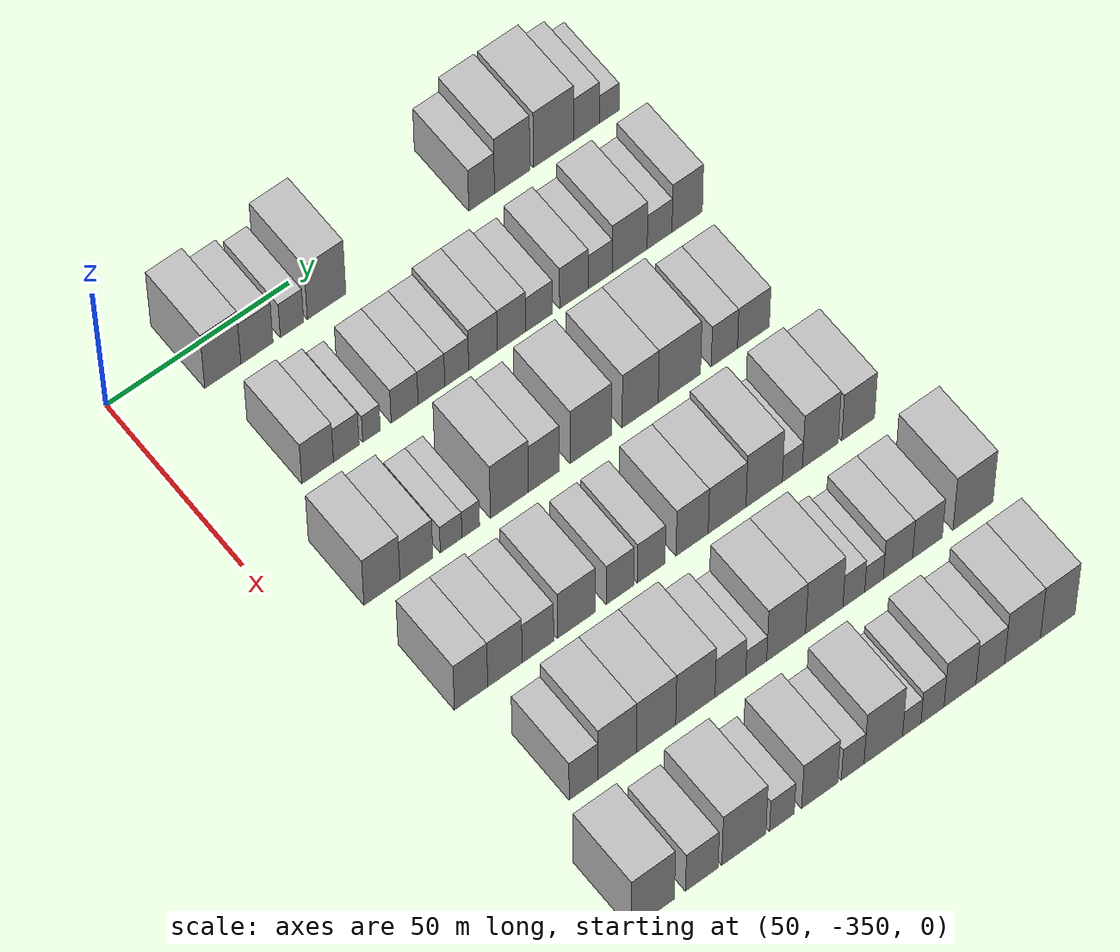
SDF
<sdf version="1.6">
 <world name="default">
  <model name="building_27">
   <static>1</static>
   <pose>50.0000 -325.5747 0 0.000000 0.000000 0.000000</pose>
   <link name="link">
    <pose>0 0 12.00 0 0 0</pose>
    <collision name="collision"><geometry><box><size>20.0000 9.8861 24.0000</size></box></geometry></collision>
    <visual name="visual">
     <cast_shadows>0</cast_shadows>
     <geometry><box><size>20.0000 9.8861 24.0000</size></box></geometry>
     <material>
      <script>
       <uri>model://HANNAS_wall/materials/scripts</uri>
       <uri>model://HANNAS_wall/materials/textures</uri>
       <name>vrc/HANNAS_wall</name>
      </script>
     </material>
    </visual>
   </link>
  </model>
  <model name="building_28">
   <static>1</static>
   <pose>50.0000 -316.2201 0 0.000000 0.000000 0.000000</pose>
   <link name="link">
    <pose>0 0 9.00 0 0 0</pose>
    <collision name="collision"><geometry><box><size>20.0000 8.8230 18.0000</size></box></geometry></collision>
    <visual name="visual">
     <cast_shadows>0</cast_shadows>
     <geometry><box><size>20.0000 8.8230 18.0000</size></box></geometry>
     <material>
      <script>
       <uri>model://HANNAS_wall/materials/scripts</uri>
       <uri>model://HANNAS_wall/materials/textures</uri>
       <name>vrc/HANNAS_wall</name>
      </script>
     </material>
    </visual>
   </link>
  </model>
  <model name="building_29">
   <static>1</static>
   <pose>50.0000 -306.5845 0 0.000000 0.000000 0.000000</pose>
   <link name="link">
    <pose>0 0 7.50 0 0 0</pose>
    <collision name="collision"><geometry><box><size>20.0000 6.4483 15.0000</size></box></geometry></collision>
    <visual name="visual">
     <cast_shadows>0</cast_shadows>
     <geometry><box><size>20.0000 6.4483 15.0000</size></box></geometry>
     <material>
      <script>
       <uri>model://HANNAS_wall/materials/scripts</uri>
       <uri>model://HANNAS_wall/materials/textures</uri>
       <name>vrc/HANNAS_wall</name>
      </script>
     </material>
    </visual>
   </link>
  </model>
  <model name="building_30">
   <static>1</static>
   <pose>50.0000 -297.0461 0 0.000000 0.000000 0.000000</pose>
   <link name="link">
    <pose>0 0 12.00 0 0 0</pose>
    <collision name="collision"><geometry><box><size>20.0000 10.6283 24.0000</size></box></geometry></collision>
    <visual name="visual">
     <cast_shadows>0</cast_shadows>
     <geometry><box><size>20.0000 10.6283 24.0000</size></box></geometry>
     <material>
      <script>
       <uri>model://HANNAS_wall/materials/scripts</uri>
       <uri>model://HANNAS_wall/materials/textures</uri>
       <name>vrc/HANNAS_wall</name>
      </script>
     </material>
    </visual>
   </link>
  </model>
  <model name="building_31">
   <static>1</static>
   <pose>50.0000 -253.9030 0 0.000000 0.000000 0.000000</pose>
   <link name="link">
    <pose>0 0 9.00 0 0 0</pose>
    <collision name="collision"><geometry><box><size>20.0000 7.2193 18.0000</size></box></geometry></collision>
    <visual name="visual">
     <cast_shadows>0</cast_shadows>
     <geometry><box><size>20.0000 7.2193 18.0000</size></box></geometry>
     <material>
      <script>
       <uri>model://HANNAS_wall/materials/scripts</uri>
       <uri>model://HANNAS_wall/materials/textures</uri>
       <name>vrc/HANNAS_wall</name>
      </script>
     </material>
    </visual>
   </link>
  </model>
  <model name="building_32">
   <static>1</static>
   <pose>50.0000 -245.3170 0 0.000000 0.000000 0.000000</pose>
   <link name="link">
    <pose>0 0 12.00 0 0 0</pose>
    <collision name="collision"><geometry><box><size>20.0000 9.9528 24.0000</size></box></geometry></collision>
    <visual name="visual">
     <cast_shadows>0</cast_shadows>
     <geometry><box><size>20.0000 9.9528 24.0000</size></box></geometry>
     <material>
      <script>
       <uri>model://HANNAS_wall/materials/scripts</uri>
       <uri>model://HANNAS_wall/materials/textures</uri>
       <name>vrc/HANNAS_wall</name>
      </script>
     </material>
    </visual>
   </link>
  </model>
  <model name="building_33">
   <static>1</static>
   <pose>50.0000 -233.6739 0 0.000000 0.000000 0.000000</pose>
   <link name="link">
    <pose>0 0 12.00 0 0 0</pose>
    <collision name="collision"><geometry><box><size>20.0000 11.3334 24.0000</size></box></geometry></collision>
    <visual name="visual">
     <cast_shadows>0</cast_shadows>
     <geometry><box><size>20.0000 11.3334 24.0000</size></box></geometry>
     <material>
      <script>
       <uri>model://HANNAS_wall/materials/scripts</uri>
       <uri>model://HANNAS_wall/materials/textures</uri>
       <name>vrc/HANNAS_wall</name>
      </script>
     </material>
    </visual>
   </link>
  </model>
  <model name="building_34">
   <static>1</static>
   <pose>50.0000 -224.3679 0 0.000000 0.000000 0.000000</pose>
   <link name="link">
    <pose>0 0 9.00 0 0 0</pose>
    <collision name="collision"><geometry><box><size>20.0000 7.2786 18.0000</size></box></geometry></collision>
    <visual name="visual">
     <cast_shadows>0</cast_shadows>
     <geometry><box><size>20.0000 7.2786 18.0000</size></box></geometry>
     <material>
      <script>
       <uri>model://HANNAS_wall/materials/scripts</uri>
       <uri>model://HANNAS_wall/materials/textures</uri>
       <name>vrc/HANNAS_wall</name>
      </script>
     </material>
    </visual>
   </link>
  </model>
  <model name="building_35">
   <static>1</static>
   <pose>50.0000 -217.9440 0 0.000000 0.000000 0.000000</pose>
   <link name="link">
    <pose>0 0 6.00 0 0 0</pose>
    <collision name="collision"><geometry><box><size>20.0000 5.5694 12.0000</size></box></geometry></collision>
    <visual name="visual">
     <cast_shadows>0</cast_shadows>
     <geometry><box><size>20.0000 5.5694 12.0000</size></box></geometry>
     <material>
      <script>
       <uri>model://HANNAS_wall/materials/scripts</uri>
       <uri>model://HANNAS_wall/materials/textures</uri>
       <name>vrc/HANNAS_wall</name>
      </script>
     </material>
    </visual>
   </link>
  </model>
  <model name="building_137">
   <static>1</static>
   <pose>82.0000 -323.5575 0 0.000000 0.000000 0.000000</pose>
   <link name="link">
    <pose>0 0 9.00 0 0 0</pose>
    <collision name="collision"><geometry><box><size>20.0000 8.6684 18.0000</size></box></geometry></collision>
    <visual name="visual">
     <cast_shadows>0</cast_shadows>
     <geometry><box><size>20.0000 8.6684 18.0000</size></box></geometry>
     <material>
      <script>
       <uri>model://HANNAS_wall/materials/scripts</uri>
       <uri>model://HANNAS_wall/materials/textures</uri>
       <name>vrc/HANNAS_wall</name>
      </script>
     </material>
    </visual>
   </link>
  </model>
  <model name="building_138">
   <static>1</static>
   <pose>82.0000 -315.7281 0 0.000000 0.000000 0.000000</pose>
   <link name="link">
    <pose>0 0 7.50 0 0 0</pose>
    <collision name="collision"><geometry><box><size>20.0000 6.9903 15.0000</size></box></geometry></collision>
    <visual name="visual">
     <cast_shadows>0</cast_shadows>
     <geometry><box><size>20.0000 6.9903 15.0000</size></box></geometry>
     <material>
      <script>
       <uri>model://HANNAS_wall/materials/scripts</uri>
       <uri>model://HANNAS_wall/materials/textures</uri>
       <name>vrc/HANNAS_wall</name>
      </script>
     </material>
    </visual>
   </link>
  </model>
  <model name="building_139">
   <static>1</static>
   <pose>82.0000 -308.8328 0 0.000000 0.000000 0.000000</pose>
   <link name="link">
    <pose>0 0 6.00 0 0 0</pose>
    <collision name="collision"><geometry><box><size>20.0000 4.8003 12.0000</size></box></geometry></collision>
    <visual name="visual">
     <cast_shadows>0</cast_shadows>
     <geometry><box><size>20.0000 4.8003 12.0000</size></box></geometry>
     <material>
      <script>
       <uri>model://HANNAS_wall/materials/scripts</uri>
       <uri>model://HANNAS_wall/materials/textures</uri>
       <name>vrc/HANNAS_wall</name>
      </script>
     </material>
    </visual>
   </link>
  </model>
  <model name="building_140">
   <static>1</static>
   <pose>82.0000 -299.7178 0 0.000000 0.000000 0.000000</pose>
   <link name="link">
    <pose>0 0 7.50 0 0 0</pose>
    <collision name="collision"><geometry><box><size>20.0000 7.4298 15.0000</size></box></geometry></collision>
    <visual name="visual">
     <cast_shadows>0</cast_shadows>
     <geometry><box><size>20.0000 7.4298 15.0000</size></box></geometry>
     <material>
      <script>
       <uri>model://HANNAS_wall/materials/scripts</uri>
       <uri>model://HANNAS_wall/materials/textures</uri>
       <name>vrc/HANNAS_wall</name>
      </script>
     </material>
    </visual>
   </link>
  </model>
  <model name="building_141">
   <static>1</static>
   <pose>82.0000 -292.3240 0 0.000000 0.000000 0.000000</pose>
   <link name="link">
    <pose>0 0 7.50 0 0 0</pose>
    <collision name="collision"><geometry><box><size>20.0000 7.3578 15.0000</size></box></geometry></collision>
    <visual name="visual">
     <cast_shadows>0</cast_shadows>
     <geometry><box><size>20.0000 7.3578 15.0000</size></box></geometry>
     <material>
      <script>
       <uri>model://HANNAS_wall/materials/scripts</uri>
       <uri>model://HANNAS_wall/materials/textures</uri>
       <name>vrc/HANNAS_wall</name>
      </script>
     </material>
    </visual>
   </link>
  </model>
  <model name="building_142">
   <static>1</static>
   <pose>82.0000 -285.3370 0 0.000000 0.000000 0.000000</pose>
   <link name="link">
    <pose>0 0 7.50 0 0 0</pose>
    <collision name="collision"><geometry><box><size>20.0000 6.6161 15.0000</size></box></geometry></collision>
    <visual name="visual">
     <cast_shadows>0</cast_shadows>
     <geometry><box><size>20.0000 6.6161 15.0000</size></box></geometry>
     <material>
      <script>
       <uri>model://HANNAS_wall/materials/scripts</uri>
       <uri>model://HANNAS_wall/materials/textures</uri>
       <name>vrc/HANNAS_wall</name>
      </script>
     </material>
    </visual>
   </link>
  </model>
  <model name="building_143">
   <static>1</static>
   <pose>82.0000 -278.0501 0 0.000000 0.000000 0.000000</pose>
   <link name="link">
    <pose>0 0 9.00 0 0 0</pose>
    <collision name="collision"><geometry><box><size>20.0000 7.9577 18.0000</size></box></geometry></collision>
    <visual name="visual">
     <cast_shadows>0</cast_shadows>
     <geometry><box><size>20.0000 7.9577 18.0000</size></box></geometry>
     <material>
      <script>
       <uri>model://HANNAS_wall/materials/scripts</uri>
       <uri>model://HANNAS_wall/materials/textures</uri>
       <name>vrc/HANNAS_wall</name>
      </script>
     </material>
    </visual>
   </link>
  </model>
  <model name="building_144">
   <static>1</static>
   <pose>82.0000 -270.1329 0 0.000000 0.000000 0.000000</pose>
   <link name="link">
    <pose>0 0 9.00 0 0 0</pose>
    <collision name="collision"><geometry><box><size>20.0000 7.8767 18.0000</size></box></geometry></collision>
    <visual name="visual">
     <cast_shadows>0</cast_shadows>
     <geometry><box><size>20.0000 7.8767 18.0000</size></box></geometry>
     <material>
      <script>
       <uri>model://HANNAS_wall/materials/scripts</uri>
       <uri>model://HANNAS_wall/materials/textures</uri>
       <name>vrc/HANNAS_wall</name>
      </script>
     </material>
    </visual>
   </link>
  </model>
  <model name="building_145">
   <static>1</static>
   <pose>82.0000 -262.4832 0 0.000000 0.000000 0.000000</pose>
   <link name="link">
    <pose>0 0 7.50 0 0 0</pose>
    <collision name="collision"><geometry><box><size>20.0000 7.4226 15.0000</size></box></geometry></collision>
    <visual name="visual">
     <cast_shadows>0</cast_shadows>
     <geometry><box><size>20.0000 7.4226 15.0000</size></box></geometry>
     <material>
      <script>
       <uri>model://HANNAS_wall/materials/scripts</uri>
       <uri>model://HANNAS_wall/materials/textures</uri>
       <name>vrc/HANNAS_wall</name>
      </script>
     </material>
    </visual>
   </link>
  </model>
  <model name="building_146">
   <static>1</static>
   <pose>82.0000 -252.7773 0 0.000000 0.000000 0.000000</pose>
   <link name="link">
    <pose>0 0 9.00 0 0 0</pose>
    <collision name="collision"><geometry><box><size>20.0000 7.9893 18.0000</size></box></geometry></collision>
    <visual name="visual">
     <cast_shadows>0</cast_shadows>
     <geometry><box><size>20.0000 7.9893 18.0000</size></box></geometry>
     <material>
      <script>
       <uri>model://HANNAS_wall/materials/scripts</uri>
       <uri>model://HANNAS_wall/materials/textures</uri>
       <name>vrc/HANNAS_wall</name>
      </script>
     </material>
    </visual>
   </link>
  </model>
  <model name="building_147">
   <static>1</static>
   <pose>82.0000 -245.4204 0 0.000000 0.000000 0.000000</pose>
   <link name="link">
    <pose>0 0 7.50 0 0 0</pose>
    <collision name="collision"><geometry><box><size>20.0000 6.7245 15.0000</size></box></geometry></collision>
    <visual name="visual">
     <cast_shadows>0</cast_shadows>
     <geometry><box><size>20.0000 6.7245 15.0000</size></box></geometry>
     <material>
      <script>
       <uri>model://HANNAS_wall/materials/scripts</uri>
       <uri>model://HANNAS_wall/materials/textures</uri>
       <name>vrc/HANNAS_wall</name>
      </script>
     </material>
    </visual>
   </link>
  </model>
  <model name="building_148">
   <static>1</static>
   <pose>82.0000 -237.1358 0 0.000000 0.000000 0.000000</pose>
   <link name="link">
    <pose>0 0 10.50 0 0 0</pose>
    <collision name="collision"><geometry><box><size>20.0000 9.8445 21.0000</size></box></geometry></collision>
    <visual name="visual">
     <cast_shadows>0</cast_shadows>
     <geometry><box><size>20.0000 9.8445 21.0000</size></box></geometry>
     <material>
      <script>
       <uri>model://HANNAS_wall/materials/scripts</uri>
       <uri>model://HANNAS_wall/materials/textures</uri>
       <name>vrc/HANNAS_wall</name>
      </script>
     </material>
    </visual>
   </link>
  </model>
  <model name="building_149">
   <static>1</static>
   <pose>82.0000 -228.7130 0 0.000000 0.000000 0.000000</pose>
   <link name="link">
    <pose>0 0 7.50 0 0 0</pose>
    <collision name="collision"><geometry><box><size>20.0000 7.0012 15.0000</size></box></geometry></collision>
    <visual name="visual">
     <cast_shadows>0</cast_shadows>
     <geometry><box><size>20.0000 7.0012 15.0000</size></box></geometry>
     <material>
      <script>
       <uri>model://HANNAS_wall/materials/scripts</uri>
       <uri>model://HANNAS_wall/materials/textures</uri>
       <name>vrc/HANNAS_wall</name>
      </script>
     </material>
    </visual>
   </link>
  </model>
  <model name="building_150">
   <static>1</static>
   <pose>82.0000 -220.9332 0 0.000000 0.000000 0.000000</pose>
   <link name="link">
    <pose>0 0 10.50 0 0 0</pose>
    <collision name="collision"><geometry><box><size>20.0000 8.5584 21.0000</size></box></geometry></collision>
    <visual name="visual">
     <cast_shadows>0</cast_shadows>
     <geometry><box><size>20.0000 8.5584 21.0000</size></box></geometry>
     <material>
      <script>
       <uri>model://HANNAS_wall/materials/scripts</uri>
       <uri>model://HANNAS_wall/materials/textures</uri>
       <name>vrc/HANNAS_wall</name>
      </script>
     </material>
    </visual>
   </link>
  </model>
  <model name="building_263">
   <static>1</static>
   <pose>114.0000 -330.1945 0 0.000000 0.000000 0.000000</pose>
   <link name="link">
    <pose>0 0 10.50 0 0 0</pose>
    <collision name="collision"><geometry><box><size>20.0000 9.7802 21.0000</size></box></geometry></collision>
    <visual name="visual">
     <cast_shadows>0</cast_shadows>
     <geometry><box><size>20.0000 9.7802 21.0000</size></box></geometry>
     <material>
      <script>
       <uri>model://HANNAS_wall/materials/scripts</uri>
       <uri>model://HANNAS_wall/materials/textures</uri>
       <name>vrc/HANNAS_wall</name>
      </script>
     </material>
    </visual>
   </link>
  </model>
  <model name="building_264">
   <static>1</static>
   <pose>114.0000 -320.8173 0 0.000000 0.000000 0.000000</pose>
   <link name="link">
    <pose>0 0 9.00 0 0 0</pose>
    <collision name="collision"><geometry><box><size>20.0000 8.9742 18.0000</size></box></geometry></collision>
    <visual name="visual">
     <cast_shadows>0</cast_shadows>
     <geometry><box><size>20.0000 8.9742 18.0000</size></box></geometry>
     <material>
      <script>
       <uri>model://HANNAS_wall/materials/scripts</uri>
       <uri>model://HANNAS_wall/materials/textures</uri>
       <name>vrc/HANNAS_wall</name>
      </script>
     </material>
    </visual>
   </link>
  </model>
  <model name="building_265">
   <static>1</static>
   <pose>114.0000 -311.3661 0 0.000000 0.000000 0.000000</pose>
   <link name="link">
    <pose>0 0 6.00 0 0 0</pose>
    <collision name="collision"><geometry><box><size>20.0000 5.9283 12.0000</size></box></geometry></collision>
    <visual name="visual">
     <cast_shadows>0</cast_shadows>
     <geometry><box><size>20.0000 5.9283 12.0000</size></box></geometry>
     <material>
      <script>
       <uri>model://HANNAS_wall/materials/scripts</uri>
       <uri>model://HANNAS_wall/materials/textures</uri>
       <name>vrc/HANNAS_wall</name>
      </script>
     </material>
    </visual>
   </link>
  </model>
  <model name="building_266">
   <static>1</static>
   <pose>114.0000 -305.9985 0 0.000000 0.000000 0.000000</pose>
   <link name="link">
    <pose>0 0 6.00 0 0 0</pose>
    <collision name="collision"><geometry><box><size>20.0000 4.8069 12.0000</size></box></geometry></collision>
    <visual name="visual">
     <cast_shadows>0</cast_shadows>
     <geometry><box><size>20.0000 4.8069 12.0000</size></box></geometry>
     <material>
      <script>
       <uri>model://HANNAS_wall/materials/scripts</uri>
       <uri>model://HANNAS_wall/materials/textures</uri>
       <name>vrc/HANNAS_wall</name>
      </script>
     </material>
    </visual>
   </link>
  </model>
  <model name="building_267">
   <static>1</static>
   <pose>114.0000 -295.3783 0 0.000000 0.000000 0.000000</pose>
   <link name="link">
    <pose>0 0 12.00 0 0 0</pose>
    <collision name="collision"><geometry><box><size>20.0000 10.4333 24.0000</size></box></geometry></collision>
    <visual name="visual">
     <cast_shadows>0</cast_shadows>
     <geometry><box><size>20.0000 10.4333 24.0000</size></box></geometry>
     <material>
      <script>
       <uri>model://HANNAS_wall/materials/scripts</uri>
       <uri>model://HANNAS_wall/materials/textures</uri>
       <name>vrc/HANNAS_wall</name>
      </script>
     </material>
    </visual>
   </link>
  </model>
  <model name="building_268">
   <static>1</static>
   <pose>114.0000 -285.9184 0 0.000000 0.000000 0.000000</pose>
   <link name="link">
    <pose>0 0 10.50 0 0 0</pose>
    <collision name="collision"><geometry><box><size>20.0000 8.4866 21.0000</size></box></geometry></collision>
    <visual name="visual">
     <cast_shadows>0</cast_shadows>
     <geometry><box><size>20.0000 8.4866 21.0000</size></box></geometry>
     <material>
      <script>
       <uri>model://HANNAS_wall/materials/scripts</uri>
       <uri>model://HANNAS_wall/materials/textures</uri>
       <name>vrc/HANNAS_wall</name>
      </script>
     </material>
    </visual>
   </link>
  </model>
  <model name="building_269">
   <static>1</static>
   <pose>114.0000 -272.9718 0 0.000000 0.000000 0.000000</pose>
   <link name="link">
    <pose>0 0 12.00 0 0 0</pose>
    <collision name="collision"><geometry><box><size>20.0000 11.4066 24.0000</size></box></geometry></collision>
    <visual name="visual">
     <cast_shadows>0</cast_shadows>
     <geometry><box><size>20.0000 11.4066 24.0000</size></box></geometry>
     <material>
      <script>
       <uri>model://HANNAS_wall/materials/scripts</uri>
       <uri>model://HANNAS_wall/materials/textures</uri>
       <name>vrc/HANNAS_wall</name>
      </script>
     </material>
    </visual>
   </link>
  </model>
  <model name="building_270">
   <static>1</static>
   <pose>114.0000 -259.2310 0 0.000000 0.000000 0.000000</pose>
   <link name="link">
    <pose>0 0 12.00 0 0 0</pose>
    <collision name="collision"><geometry><box><size>20.0000 10.0750 24.0000</size></box></geometry></collision>
    <visual name="visual">
     <cast_shadows>0</cast_shadows>
     <geometry><box><size>20.0000 10.0750 24.0000</size></box></geometry>
     <material>
      <script>
       <uri>model://HANNAS_wall/materials/scripts</uri>
       <uri>model://HANNAS_wall/materials/textures</uri>
       <name>vrc/HANNAS_wall</name>
      </script>
     </material>
    </visual>
   </link>
  </model>
  <model name="building_271">
   <static>1</static>
   <pose>114.0000 -248.2995 0 0.000000 0.000000 0.000000</pose>
   <link name="link">
    <pose>0 0 12.00 0 0 0</pose>
    <collision name="collision"><geometry><box><size>20.0000 11.7880 24.0000</size></box></geometry></collision>
    <visual name="visual">
     <cast_shadows>0</cast_shadows>
     <geometry><box><size>20.0000 11.7880 24.0000</size></box></geometry>
     <material>
      <script>
       <uri>model://HANNAS_wall/materials/scripts</uri>
       <uri>model://HANNAS_wall/materials/textures</uri>
       <name>vrc/HANNAS_wall</name>
      </script>
     </material>
    </visual>
   </link>
  </model>
  <model name="building_272">
   <static>1</static>
   <pose>114.0000 -235.7261 0 0.000000 0.000000 0.000000</pose>
   <link name="link">
    <pose>0 0 9.00 0 0 0</pose>
    <collision name="collision"><geometry><box><size>20.0000 7.3588 18.0000</size></box></geometry></collision>
    <visual name="visual">
     <cast_shadows>0</cast_shadows>
     <geometry><box><size>20.0000 7.3588 18.0000</size></box></geometry>
     <material>
      <script>
       <uri>model://HANNAS_wall/materials/scripts</uri>
       <uri>model://HANNAS_wall/materials/textures</uri>
       <name>vrc/HANNAS_wall</name>
      </script>
     </material>
    </visual>
   </link>
  </model>
  <model name="building_273">
   <static>1</static>
   <pose>114.0000 -227.5735 0 0.000000 0.000000 0.000000</pose>
   <link name="link">
    <pose>0 0 9.00 0 0 0</pose>
    <collision name="collision"><geometry><box><size>20.0000 8.9463 18.0000</size></box></geometry></collision>
    <visual name="visual">
     <cast_shadows>0</cast_shadows>
     <geometry><box><size>20.0000 8.9463 18.0000</size></box></geometry>
     <material>
      <script>
       <uri>model://HANNAS_wall/materials/scripts</uri>
       <uri>model://HANNAS_wall/materials/textures</uri>
       <name>vrc/HANNAS_wall</name>
      </script>
     </material>
    </visual>
   </link>
  </model>
  <model name="building_383">
   <static>1</static>
   <pose>146.0000 -330.4315 0 0.000000 0.000000 0.000000</pose>
   <link name="link">
    <pose>0 0 10.50 0 0 0</pose>
    <collision name="collision"><geometry><box><size>20.0000 9.0293 21.0000</size></box></geometry></collision>
    <visual name="visual">
     <cast_shadows>0</cast_shadows>
     <geometry><box><size>20.0000 9.0293 21.0000</size></box></geometry>
     <material>
      <script>
       <uri>model://HANNAS_wall/materials/scripts</uri>
       <uri>model://HANNAS_wall/materials/textures</uri>
       <name>vrc/HANNAS_wall</name>
      </script>
     </material>
    </visual>
   </link>
  </model>
  <model name="building_384">
   <static>1</static>
   <pose>146.0000 -321.2402 0 0.000000 0.000000 0.000000</pose>
   <link name="link">
    <pose>0 0 10.50 0 0 0</pose>
    <collision name="collision"><geometry><box><size>20.0000 9.3533 21.0000</size></box></geometry></collision>
    <visual name="visual">
     <cast_shadows>0</cast_shadows>
     <geometry><box><size>20.0000 9.3533 21.0000</size></box></geometry>
     <material>
      <script>
       <uri>model://HANNAS_wall/materials/scripts</uri>
       <uri>model://HANNAS_wall/materials/textures</uri>
       <name>vrc/HANNAS_wall</name>
      </script>
     </material>
    </visual>
   </link>
  </model>
  <model name="building_385">
   <static>1</static>
   <pose>146.0000 -312.2755 0 0.000000 0.000000 0.000000</pose>
   <link name="link">
    <pose>0 0 9.00 0 0 0</pose>
    <collision name="collision"><geometry><box><size>20.0000 8.5761 18.0000</size></box></geometry></collision>
    <visual name="visual">
     <cast_shadows>0</cast_shadows>
     <geometry><box><size>20.0000 8.5761 18.0000</size></box></geometry>
     <material>
      <script>
       <uri>model://HANNAS_wall/materials/scripts</uri>
       <uri>model://HANNAS_wall/materials/textures</uri>
       <name>vrc/HANNAS_wall</name>
      </script>
     </material>
    </visual>
   </link>
  </model>
  <model name="building_386">
   <static>1</static>
   <pose>146.0000 -301.8006 0 0.000000 0.000000 0.000000</pose>
   <link name="link">
    <pose>0 0 10.50 0 0 0</pose>
    <collision name="collision"><geometry><box><size>20.0000 10.3737 21.0000</size></box></geometry></collision>
    <visual name="visual">
     <cast_shadows>0</cast_shadows>
     <geometry><box><size>20.0000 10.3737 21.0000</size></box></geometry>
     <material>
      <script>
       <uri>model://HANNAS_wall/materials/scripts</uri>
       <uri>model://HANNAS_wall/materials/textures</uri>
       <name>vrc/HANNAS_wall</name>
      </script>
     </material>
    </visual>
   </link>
  </model>
  <model name="building_387">
   <static>1</static>
   <pose>146.0000 -289.8461 0 0.000000 0.000000 0.000000</pose>
   <link name="link">
    <pose>0 0 9.00 0 0 0</pose>
    <collision name="collision"><geometry><box><size>20.0000 7.5351 18.0000</size></box></geometry></collision>
    <visual name="visual">
     <cast_shadows>0</cast_shadows>
     <geometry><box><size>20.0000 7.5351 18.0000</size></box></geometry>
     <material>
      <script>
       <uri>model://HANNAS_wall/materials/scripts</uri>
       <uri>model://HANNAS_wall/materials/textures</uri>
       <name>vrc/HANNAS_wall</name>
      </script>
     </material>
    </visual>
   </link>
  </model>
  <model name="building_388">
   <static>1</static>
   <pose>146.0000 -281.2570 0 0.000000 0.000000 0.000000</pose>
   <link name="link">
    <pose>0 0 9.00 0 0 0</pose>
    <collision name="collision"><geometry><box><size>20.0000 7.6432 18.0000</size></box></geometry></collision>
    <visual name="visual">
     <cast_shadows>0</cast_shadows>
     <geometry><box><size>20.0000 7.6432 18.0000</size></box></geometry>
     <material>
      <script>
       <uri>model://HANNAS_wall/materials/scripts</uri>
       <uri>model://HANNAS_wall/materials/textures</uri>
       <name>vrc/HANNAS_wall</name>
      </script>
     </material>
    </visual>
   </link>
  </model>
  <model name="building_389">
   <static>1</static>
   <pose>146.0000 -269.9870 0 0.000000 0.000000 0.000000</pose>
   <link name="link">
    <pose>0 0 10.50 0 0 0</pose>
    <collision name="collision"><geometry><box><size>20.0000 8.8967 21.0000</size></box></geometry></collision>
    <visual name="visual">
     <cast_shadows>0</cast_shadows>
     <geometry><box><size>20.0000 8.8967 21.0000</size></box></geometry>
     <material>
      <script>
       <uri>model://HANNAS_wall/materials/scripts</uri>
       <uri>model://HANNAS_wall/materials/textures</uri>
       <name>vrc/HANNAS_wall</name>
      </script>
     </material>
    </visual>
   </link>
  </model>
  <model name="building_390">
   <static>1</static>
   <pose>146.0000 -260.3099 0 0.000000 0.000000 0.000000</pose>
   <link name="link">
    <pose>0 0 10.50 0 0 0</pose>
    <collision name="collision"><geometry><box><size>20.0000 10.4575 21.0000</size></box></geometry></collision>
    <visual name="visual">
     <cast_shadows>0</cast_shadows>
     <geometry><box><size>20.0000 10.4575 21.0000</size></box></geometry>
     <material>
      <script>
       <uri>model://HANNAS_wall/materials/scripts</uri>
       <uri>model://HANNAS_wall/materials/textures</uri>
       <name>vrc/HANNAS_wall</name>
      </script>
     </material>
    </visual>
   </link>
  </model>
  <model name="building_391">
   <static>1</static>
   <pose>146.0000 -250.0148 0 0.000000 0.000000 0.000000</pose>
   <link name="link">
    <pose>0 0 12.00 0 0 0</pose>
    <collision name="collision"><geometry><box><size>20.0000 10.1326 24.0000</size></box></geometry></collision>
    <visual name="visual">
     <cast_shadows>0</cast_shadows>
     <geometry><box><size>20.0000 10.1326 24.0000</size></box></geometry>
     <material>
      <script>
       <uri>model://HANNAS_wall/materials/scripts</uri>
       <uri>model://HANNAS_wall/materials/textures</uri>
       <name>vrc/HANNAS_wall</name>
      </script>
     </material>
    </visual>
   </link>
  </model>
  <model name="building_392">
   <static>1</static>
   <pose>146.0000 -242.1457 0 0.000000 0.000000 0.000000</pose>
   <link name="link">
    <pose>0 0 6.00 0 0 0</pose>
    <collision name="collision"><geometry><box><size>20.0000 5.6057 12.0000</size></box></geometry></collision>
    <visual name="visual">
     <cast_shadows>0</cast_shadows>
     <geometry><box><size>20.0000 5.6057 12.0000</size></box></geometry>
     <material>
      <script>
       <uri>model://HANNAS_wall/materials/scripts</uri>
       <uri>model://HANNAS_wall/materials/textures</uri>
       <name>vrc/HANNAS_wall</name>
      </script>
     </material>
    </visual>
   </link>
  </model>
  <model name="building_393">
   <static>1</static>
   <pose>146.0000 -234.3349 0 0.000000 0.000000 0.000000</pose>
   <link name="link">
    <pose>0 0 12.00 0 0 0</pose>
    <collision name="collision"><geometry><box><size>20.0000 10.0159 24.0000</size></box></geometry></collision>
    <visual name="visual">
     <cast_shadows>0</cast_shadows>
     <geometry><box><size>20.0000 10.0159 24.0000</size></box></geometry>
     <material>
      <script>
       <uri>model://HANNAS_wall/materials/scripts</uri>
       <uri>model://HANNAS_wall/materials/textures</uri>
       <name>vrc/HANNAS_wall</name>
      </script>
     </material>
    </visual>
   </link>
  </model>
  <model name="building_394">
   <static>1</static>
   <pose>146.0000 -223.7334 0 0.000000 0.000000 0.000000</pose>
   <link name="link">
    <pose>0 0 10.50 0 0 0</pose>
    <collision name="collision"><geometry><box><size>20.0000 9.1871 21.0000</size></box></geometry></collision>
    <visual name="visual">
     <cast_shadows>0</cast_shadows>
     <geometry><box><size>20.0000 9.1871 21.0000</size></box></geometry>
     <material>
      <script>
       <uri>model://HANNAS_wall/materials/scripts</uri>
       <uri>model://HANNAS_wall/materials/textures</uri>
       <name>vrc/HANNAS_wall</name>
      </script>
     </material>
    </visual>
   </link>
  </model>
  <model name="building_508">
   <static>1</static>
   <pose>178.0000 -324.7512 0 0.000000 0.000000 0.000000</pose>
   <link name="link">
    <pose>0 0 9.00 0 0 0</pose>
    <collision name="collision"><geometry><box><size>20.0000 7.7136 18.0000</size></box></geometry></collision>
    <visual name="visual">
     <cast_shadows>0</cast_shadows>
     <geometry><box><size>20.0000 7.7136 18.0000</size></box></geometry>
     <material>
      <script>
       <uri>model://HANNAS_wall/materials/scripts</uri>
       <uri>model://HANNAS_wall/materials/textures</uri>
       <name>vrc/HANNAS_wall</name>
      </script>
     </material>
    </visual>
   </link>
  </model>
  <model name="building_509">
   <static>1</static>
   <pose>178.0000 -315.6468 0 0.000000 0.000000 0.000000</pose>
   <link name="link">
    <pose>0 0 12.00 0 0 0</pose>
    <collision name="collision"><geometry><box><size>20.0000 10.4952 24.0000</size></box></geometry></collision>
    <visual name="visual">
     <cast_shadows>0</cast_shadows>
     <geometry><box><size>20.0000 10.4952 24.0000</size></box></geometry>
     <material>
      <script>
       <uri>model://HANNAS_wall/materials/scripts</uri>
       <uri>model://HANNAS_wall/materials/textures</uri>
       <name>vrc/HANNAS_wall</name>
      </script>
     </material>
    </visual>
   </link>
  </model>
  <model name="building_510">
   <static>1</static>
   <pose>178.0000 -305.0476 0 0.000000 0.000000 0.000000</pose>
   <link name="link">
    <pose>0 0 12.00 0 0 0</pose>
    <collision name="collision"><geometry><box><size>20.0000 10.7031 24.0000</size></box></geometry></collision>
    <visual name="visual">
     <cast_shadows>0</cast_shadows>
     <geometry><box><size>20.0000 10.7031 24.0000</size></box></geometry>
     <material>
      <script>
       <uri>model://HANNAS_wall/materials/scripts</uri>
       <uri>model://HANNAS_wall/materials/textures</uri>
       <name>vrc/HANNAS_wall</name>
      </script>
     </material>
    </visual>
   </link>
  </model>
  <model name="building_511">
   <static>1</static>
   <pose>178.0000 -294.3245 0 0.000000 0.000000 0.000000</pose>
   <link name="link">
    <pose>0 0 12.00 0 0 0</pose>
    <collision name="collision"><geometry><box><size>20.0000 10.7432 24.0000</size></box></geometry></collision>
    <visual name="visual">
     <cast_shadows>0</cast_shadows>
     <geometry><box><size>20.0000 10.7432 24.0000</size></box></geometry>
     <material>
      <script>
       <uri>model://HANNAS_wall/materials/scripts</uri>
       <uri>model://HANNAS_wall/materials/textures</uri>
       <name>vrc/HANNAS_wall</name>
      </script>
     </material>
    </visual>
   </link>
  </model>
  <model name="building_512">
   <static>1</static>
   <pose>178.0000 -284.7420 0 0.000000 0.000000 0.000000</pose>
   <link name="link">
    <pose>0 0 9.00 0 0 0</pose>
    <collision name="collision"><geometry><box><size>20.0000 8.4218 18.0000</size></box></geometry></collision>
    <visual name="visual">
     <cast_shadows>0</cast_shadows>
     <geometry><box><size>20.0000 8.4218 18.0000</size></box></geometry>
     <material>
      <script>
       <uri>model://HANNAS_wall/materials/scripts</uri>
       <uri>model://HANNAS_wall/materials/textures</uri>
       <name>vrc/HANNAS_wall</name>
      </script>
     </material>
    </visual>
   </link>
  </model>
  <model name="building_513">
   <static>1</static>
   <pose>178.0000 -277.6505 0 0.000000 0.000000 0.000000</pose>
   <link name="link">
    <pose>0 0 6.00 0 0 0</pose>
    <collision name="collision"><geometry><box><size>20.0000 5.7612 12.0000</size></box></geometry></collision>
    <visual name="visual">
     <cast_shadows>0</cast_shadows>
     <geometry><box><size>20.0000 5.7612 12.0000</size></box></geometry>
     <material>
      <script>
       <uri>model://HANNAS_wall/materials/scripts</uri>
       <uri>model://HANNAS_wall/materials/textures</uri>
       <name>vrc/HANNAS_wall</name>
      </script>
     </material>
    </visual>
   </link>
  </model>
  <model name="building_514">
   <static>1</static>
   <pose>178.0000 -269.4127 0 0.000000 0.000000 0.000000</pose>
   <link name="link">
    <pose>0 0 12.00 0 0 0</pose>
    <collision name="collision"><geometry><box><size>20.0000 10.7146 24.0000</size></box></geometry></collision>
    <visual name="visual">
     <cast_shadows>0</cast_shadows>
     <geometry><box><size>20.0000 10.7146 24.0000</size></box></geometry>
     <material>
      <script>
       <uri>model://HANNAS_wall/materials/scripts</uri>
       <uri>model://HANNAS_wall/materials/textures</uri>
       <name>vrc/HANNAS_wall</name>
      </script>
     </material>
    </visual>
   </link>
  </model>
  <model name="building_515">
   <static>1</static>
   <pose>178.0000 -258.8726 0 0.000000 0.000000 0.000000</pose>
   <link name="link">
    <pose>0 0 12.00 0 0 0</pose>
    <collision name="collision"><geometry><box><size>20.0000 10.3656 24.0000</size></box></geometry></collision>
    <visual name="visual">
     <cast_shadows>0</cast_shadows>
     <geometry><box><size>20.0000 10.3656 24.0000</size></box></geometry>
     <material>
      <script>
       <uri>model://HANNAS_wall/materials/scripts</uri>
       <uri>model://HANNAS_wall/materials/textures</uri>
       <name>vrc/HANNAS_wall</name>
      </script>
     </material>
    </visual>
   </link>
  </model>
  <model name="building_516">
   <static>1</static>
   <pose>178.0000 -250.6629 0 0.000000 0.000000 0.000000</pose>
   <link name="link">
    <pose>0 0 7.50 0 0 0</pose>
    <collision name="collision"><geometry><box><size>20.0000 6.0537 15.0000</size></box></geometry></collision>
    <visual name="visual">
     <cast_shadows>0</cast_shadows>
     <geometry><box><size>20.0000 6.0537 15.0000</size></box></geometry>
     <material>
      <script>
       <uri>model://HANNAS_wall/materials/scripts</uri>
       <uri>model://HANNAS_wall/materials/textures</uri>
       <name>vrc/HANNAS_wall</name>
      </script>
     </material>
    </visual>
   </link>
  </model>
  <model name="building_517">
   <static>1</static>
   <pose>178.0000 -245.0617 0 0.000000 0.000000 0.000000</pose>
   <link name="link">
    <pose>0 0 6.00 0 0 0</pose>
    <collision name="collision"><geometry><box><size>20.0000 5.1488 12.0000</size></box></geometry></collision>
    <visual name="visual">
     <cast_shadows>0</cast_shadows>
     <geometry><box><size>20.0000 5.1488 12.0000</size></box></geometry>
     <material>
      <script>
       <uri>model://HANNAS_wall/materials/scripts</uri>
       <uri>model://HANNAS_wall/materials/textures</uri>
       <name>vrc/HANNAS_wall</name>
      </script>
     </material>
    </visual>
   </link>
  </model>
  <model name="building_518">
   <static>1</static>
   <pose>178.0000 -238.4084 0 0.000000 0.000000 0.000000</pose>
   <link name="link">
    <pose>0 0 9.00 0 0 0</pose>
    <collision name="collision"><geometry><box><size>20.0000 8.1578 18.0000</size></box></geometry></collision>
    <visual name="visual">
     <cast_shadows>0</cast_shadows>
     <geometry><box><size>20.0000 8.1578 18.0000</size></box></geometry>
     <material>
      <script>
       <uri>model://HANNAS_wall/materials/scripts</uri>
       <uri>model://HANNAS_wall/materials/textures</uri>
       <name>vrc/HANNAS_wall</name>
      </script>
     </material>
    </visual>
   </link>
  </model>
  <model name="building_519">
   <static>1</static>
   <pose>178.0000 -230.1672 0 0.000000 0.000000 0.000000</pose>
   <link name="link">
    <pose>0 0 9.00 0 0 0</pose>
    <collision name="collision"><geometry><box><size>20.0000 8.3246 18.0000</size></box></geometry></collision>
    <visual name="visual">
     <cast_shadows>0</cast_shadows>
     <geometry><box><size>20.0000 8.3246 18.0000</size></box></geometry>
     <material>
      <script>
       <uri>model://HANNAS_wall/materials/scripts</uri>
       <uri>model://HANNAS_wall/materials/textures</uri>
       <name>vrc/HANNAS_wall</name>
      </script>
     </material>
    </visual>
   </link>
  </model>
  <model name="building_520">
   <static>1</static>
   <pose>178.0000 -217.4099 0 0.000000 0.000000 0.000000</pose>
   <link name="link">
    <pose>0 0 12.00 0 0 0</pose>
    <collision name="collision"><geometry><box><size>20.0000 11.1901 24.0000</size></box></geometry></collision>
    <visual name="visual">
     <cast_shadows>0</cast_shadows>
     <geometry><box><size>20.0000 11.1901 24.0000</size></box></geometry>
     <material>
      <script>
       <uri>model://HANNAS_wall/materials/scripts</uri>
       <uri>model://HANNAS_wall/materials/textures</uri>
       <name>vrc/HANNAS_wall</name>
      </script>
     </material>
    </visual>
   </link>
  </model>
  <model name="building_627">
   <static>1</static>
   <pose>210.0000 -331.0300 0 0.000000 0.000000 0.000000</pose>
   <link name="link">
    <pose>0 0 12.00 0 0 0</pose>
    <collision name="collision"><geometry><box><size>20.0000 11.6452 24.0000</size></box></geometry></collision>
    <visual name="visual">
     <cast_shadows>0</cast_shadows>
     <geometry><box><size>20.0000 11.6452 24.0000</size></box></geometry>
     <material>
      <script>
       <uri>model://HANNAS_wall/materials/scripts</uri>
       <uri>model://HANNAS_wall/materials/textures</uri>
       <name>vrc/HANNAS_wall</name>
      </script>
     </material>
    </visual>
   </link>
  </model>
  <model name="building_628">
   <static>1</static>
   <pose>210.0000 -317.8064 0 0.000000 0.000000 0.000000</pose>
   <link name="link">
    <pose>0 0 9.00 0 0 0</pose>
    <collision name="collision"><geometry><box><size>20.0000 8.8021 18.0000</size></box></geometry></collision>
    <visual name="visual">
     <cast_shadows>0</cast_shadows>
     <geometry><box><size>20.0000 8.8021 18.0000</size></box></geometry>
     <material>
      <script>
       <uri>model://HANNAS_wall/materials/scripts</uri>
       <uri>model://HANNAS_wall/materials/textures</uri>
       <name>vrc/HANNAS_wall</name>
      </script>
     </material>
    </visual>
   </link>
  </model>
  <model name="building_629">
   <static>1</static>
   <pose>210.0000 -306.4310 0 0.000000 0.000000 0.000000</pose>
   <link name="link">
    <pose>0 0 12.00 0 0 0</pose>
    <collision name="collision"><geometry><box><size>20.0000 11.9487 24.0000</size></box></geometry></collision>
    <visual name="visual">
     <cast_shadows>0</cast_shadows>
     <geometry><box><size>20.0000 11.9487 24.0000</size></box></geometry>
     <material>
      <script>
       <uri>model://HANNAS_wall/materials/scripts</uri>
       <uri>model://HANNAS_wall/materials/textures</uri>
       <name>vrc/HANNAS_wall</name>
      </script>
     </material>
    </visual>
   </link>
  </model>
  <model name="building_630">
   <static>1</static>
   <pose>210.0000 -296.0823 0 0.000000 0.000000 0.000000</pose>
   <link name="link">
    <pose>0 0 7.50 0 0 0</pose>
    <collision name="collision"><geometry><box><size>20.0000 6.7485 15.0000</size></box></geometry></collision>
    <visual name="visual">
     <cast_shadows>0</cast_shadows>
     <geometry><box><size>20.0000 6.7485 15.0000</size></box></geometry>
     <material>
      <script>
       <uri>model://HANNAS_wall/materials/scripts</uri>
       <uri>model://HANNAS_wall/materials/textures</uri>
       <name>vrc/HANNAS_wall</name>
      </script>
     </material>
    </visual>
   </link>
  </model>
  <model name="building_631">
   <static>1</static>
   <pose>210.0000 -285.7766 0 0.000000 0.000000 0.000000</pose>
   <link name="link">
    <pose>0 0 10.50 0 0 0</pose>
    <collision name="collision"><geometry><box><size>20.0000 9.8629 21.0000</size></box></geometry></collision>
    <visual name="visual">
     <cast_shadows>0</cast_shadows>
     <geometry><box><size>20.0000 9.8629 21.0000</size></box></geometry>
     <material>
      <script>
       <uri>model://HANNAS_wall/materials/scripts</uri>
       <uri>model://HANNAS_wall/materials/textures</uri>
       <name>vrc/HANNAS_wall</name>
      </script>
     </material>
    </visual>
   </link>
  </model>
  <model name="building_632">
   <static>1</static>
   <pose>210.0000 -276.7304 0 0.000000 0.000000 0.000000</pose>
   <link name="link">
    <pose>0 0 7.50 0 0 0</pose>
    <collision name="collision"><geometry><box><size>20.0000 6.2296 15.0000</size></box></geometry></collision>
    <visual name="visual">
     <cast_shadows>0</cast_shadows>
     <geometry><box><size>20.0000 6.2296 15.0000</size></box></geometry>
     <material>
      <script>
       <uri>model://HANNAS_wall/materials/scripts</uri>
       <uri>model://HANNAS_wall/materials/textures</uri>
       <name>vrc/HANNAS_wall</name>
      </script>
     </material>
    </visual>
   </link>
  </model>
  <model name="building_633">
   <static>1</static>
   <pose>210.0000 -268.3186 0 0.000000 0.000000 0.000000</pose>
   <link name="link">
    <pose>0 0 12.00 0 0 0</pose>
    <collision name="collision"><geometry><box><size>20.0000 10.5940 24.0000</size></box></geometry></collision>
    <visual name="visual">
     <cast_shadows>0</cast_shadows>
     <geometry><box><size>20.0000 10.5940 24.0000</size></box></geometry>
     <material>
      <script>
       <uri>model://HANNAS_wall/materials/scripts</uri>
       <uri>model://HANNAS_wall/materials/textures</uri>
       <name>vrc/HANNAS_wall</name>
      </script>
     </material>
    </visual>
   </link>
  </model>
  <model name="building_634">
   <static>1</static>
   <pose>210.0000 -260.4778 0 0.000000 0.000000 0.000000</pose>
   <link name="link">
    <pose>0 0 6.00 0 0 0</pose>
    <collision name="collision"><geometry><box><size>20.0000 5.0875 12.0000</size></box></geometry></collision>
    <visual name="visual">
     <cast_shadows>0</cast_shadows>
     <geometry><box><size>20.0000 5.0875 12.0000</size></box></geometry>
     <material>
      <script>
       <uri>model://HANNAS_wall/materials/scripts</uri>
       <uri>model://HANNAS_wall/materials/textures</uri>
       <name>vrc/HANNAS_wall</name>
      </script>
     </material>
    </visual>
   </link>
  </model>
  <model name="building_635">
   <static>1</static>
   <pose>210.0000 -254.7518 0 0.000000 0.000000 0.000000</pose>
   <link name="link">
    <pose>0 0 7.50 0 0 0</pose>
    <collision name="collision"><geometry><box><size>20.0000 6.3645 15.0000</size></box></geometry></collision>
    <visual name="visual">
     <cast_shadows>0</cast_shadows>
     <geometry><box><size>20.0000 6.3645 15.0000</size></box></geometry>
     <material>
      <script>
       <uri>model://HANNAS_wall/materials/scripts</uri>
       <uri>model://HANNAS_wall/materials/textures</uri>
       <name>vrc/HANNAS_wall</name>
      </script>
     </material>
    </visual>
   </link>
  </model>
  <model name="building_636">
   <static>1</static>
   <pose>210.0000 -247.1488 0 0.000000 0.000000 0.000000</pose>
   <link name="link">
    <pose>0 0 10.50 0 0 0</pose>
    <collision name="collision"><geometry><box><size>20.0000 8.8414 21.0000</size></box></geometry></collision>
    <visual name="visual">
     <cast_shadows>0</cast_shadows>
     <geometry><box><size>20.0000 8.8414 21.0000</size></box></geometry>
     <material>
      <script>
       <uri>model://HANNAS_wall/materials/scripts</uri>
       <uri>model://HANNAS_wall/materials/textures</uri>
       <name>vrc/HANNAS_wall</name>
      </script>
     </material>
    </visual>
   </link>
  </model>
  <model name="building_637">
   <static>1</static>
   <pose>210.0000 -238.7536 0 0.000000 0.000000 0.000000</pose>
   <link name="link">
    <pose>0 0 9.00 0 0 0</pose>
    <collision name="collision"><geometry><box><size>20.0000 7.9491 18.0000</size></box></geometry></collision>
    <visual name="visual">
     <cast_shadows>0</cast_shadows>
     <geometry><box><size>20.0000 7.9491 18.0000</size></box></geometry>
     <material>
      <script>
       <uri>model://HANNAS_wall/materials/scripts</uri>
       <uri>model://HANNAS_wall/materials/textures</uri>
       <name>vrc/HANNAS_wall</name>
      </script>
     </material>
    </visual>
   </link>
  </model>
  <model name="building_638">
   <static>1</static>
   <pose>210.0000 -229.7719 0 0.000000 0.000000 0.000000</pose>
   <link name="link">
    <pose>0 0 12.00 0 0 0</pose>
    <collision name="collision"><geometry><box><size>20.0000 10.0142 24.0000</size></box></geometry></collision>
    <visual name="visual">
     <cast_shadows>0</cast_shadows>
     <geometry><box><size>20.0000 10.0142 24.0000</size></box></geometry>
     <material>
      <script>
       <uri>model://HANNAS_wall/materials/scripts</uri>
       <uri>model://HANNAS_wall/materials/textures</uri>
       <name>vrc/HANNAS_wall</name>
      </script>
     </material>
    </visual>
   </link>
  </model>
  <model name="building_639">
   <static>1</static>
   <pose>210.0000 -219.9254 0 0.000000 0.000000 0.000000</pose>
   <link name="link">
    <pose>0 0 12.00 0 0 0</pose>
    <collision name="collision"><geometry><box><size>20.0000 9.6788 24.0000</size></box></geometry></collision>
    <visual name="visual">
     <cast_shadows>0</cast_shadows>
     <geometry><box><size>20.0000 9.6788 24.0000</size></box></geometry>
     <material>
      <script>
       <uri>model://HANNAS_wall/materials/scripts</uri>
       <uri>model://HANNAS_wall/materials/textures</uri>
       <name>vrc/HANNAS_wall</name>
      </script>
     </material>
    </visual>
   </link>
  </model>
 </world>
</sdf>
